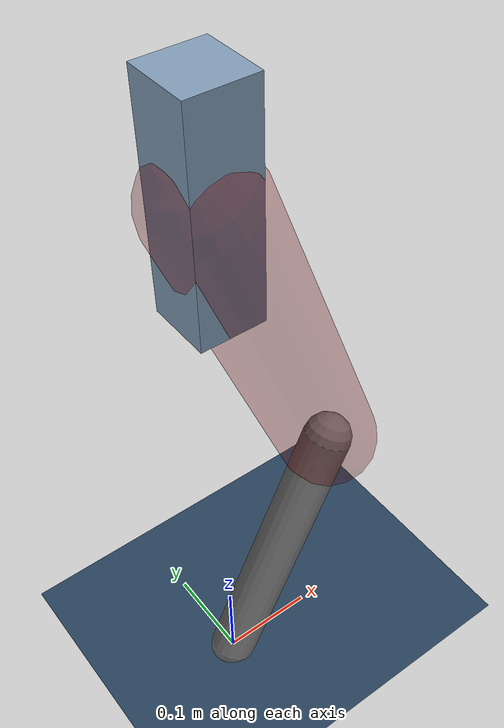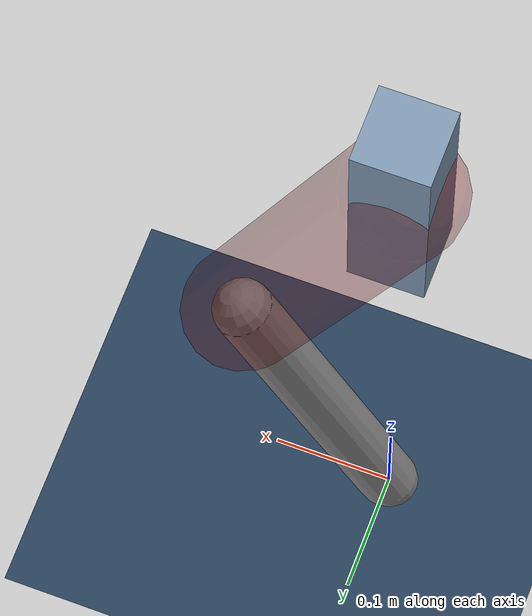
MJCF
<mujoco model="Hopper2D">
	<compiler inertiafromgeom="true" angle="radian" />
	<option timestep="0.001" integrator="implicit" cone="elliptic" solver="Newton" tolerance="1e-10" />

	<default>
		<geom contype="1" conaffinity="1" condim="3" friction="2 0.005 0.0001" solref="0.005 1" />
		<joint limited="true" damping="0.1" />
	</default>

	<asset>
		<texture name="skybox" type="skybox" builtin="gradient" rgb1=".4 .6 .8" rgb2="0 0 0" width="800" height="800" />
		<texture name="grid" type="2d" builtin="checker" rgb1=".1 .2 .3" rgb2=".2 .3 .4" width="300" height="300" mark="edge" markrgb=".2 .3 .4" />
		<material name="ground" texture="grid" texrepeat="1 1" texuniform="true" reflectance="0.1" />
		<material name="leg" rgba="0.5 0.6 0.7 1" />
	</asset>

	<worldbody>

		<geom name="floor" type="plane" size="5 5 0.25" material="ground" />

		<light directional="false" diffuse="0.8 0.8 0.8" specular="0.3 0.3 0.3" pos="0 0 2" dir="0 0 -1" />
		<light mode="targetbodycom" target="base" directional="false" diffuse="0.8 0.8 0.8" specular="0.3 0.3 0.3" pos="0 0 2" dir="0 0 -1" />

		<camera name="fixed" pos="0 -2 1" xyaxes="1 0 0 0 0 1" />
		<camera name="tracking" mode="trackcom" pos="0 -3 1" />

		<body name="root" pos="0 0 0.5999948107607931">
			<joint name="slide_x" type="slide" axis="1 0 0" range="-100 100" />
			<joint name="slide_z" type="slide" axis="0 0 1" range="0 10" />

			<body name="base" pos="0 0 0">
				<geom name="torso" type="box" size="0.03 0.03 0.1" mass="3.798" material="leg" />

				<body name="link1" pos="0 0 0" euler="0 1.199969956567413 0">
					<joint type="hinge" axis="0 -1 0" pos="0 0 0" name="hinge1" limited="true" range="-3.14 3.14" stiffness="0" damping="0.1" />
					<geom name="thigh" type="capsule" fromto="0 0 0 0.34967240597100346 0 0" size="0.05" rgba="0.5 0 0 0.3" mass="1.1257827367188098" />

					<body name="link2" pos="0.34967240597100346 0 0" euler="0 0.8038748997245726 0">
						<joint type="hinge" axis="0 -1 0" pos="0 0 0" name="hinge2" limited="true" range="-3.14 3.14" stiffness="0" damping="0.1" />
						<geom name="shank" type="capsule" fromto="0 0 0 0.30196439436843214 0 0" size="0.025" mass="0.48506795493158894" />

					</body>
				</body>
			</body>
		</body>
	</worldbody>

	<actuator>
		<motor name="torque1" joint="hinge1" ctrlrange="-252.7007176951797 252.7007176951797" ctrllimited="true" gear="1" />
		<motor name="torque2" joint="hinge2" ctrlrange="-28.30125589438126 28.30125589438126" ctrllimited="true" gear="1" />
	</actuator>
</mujoco>
